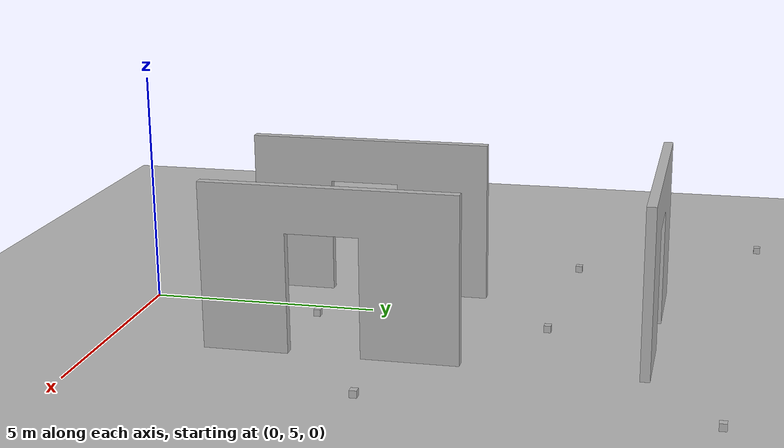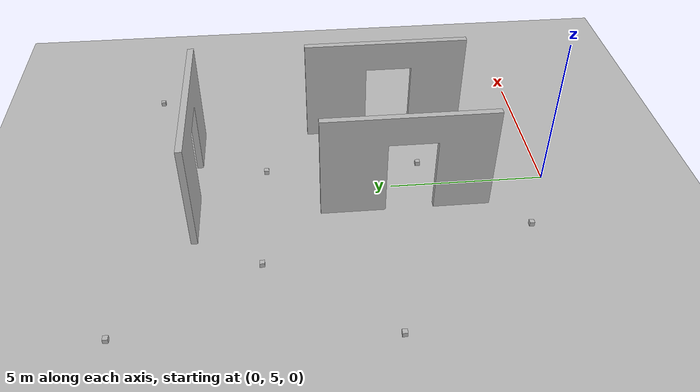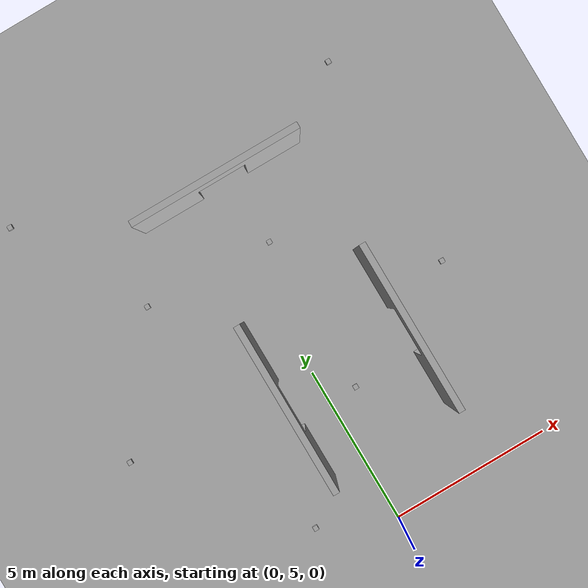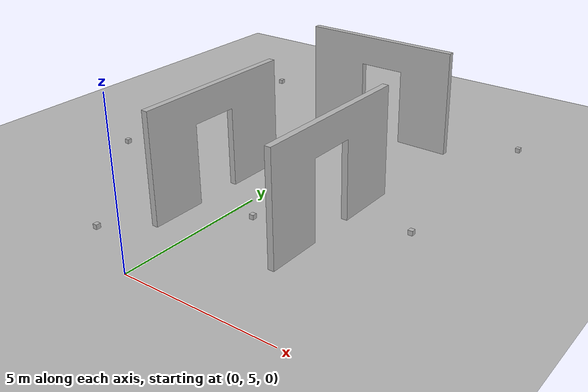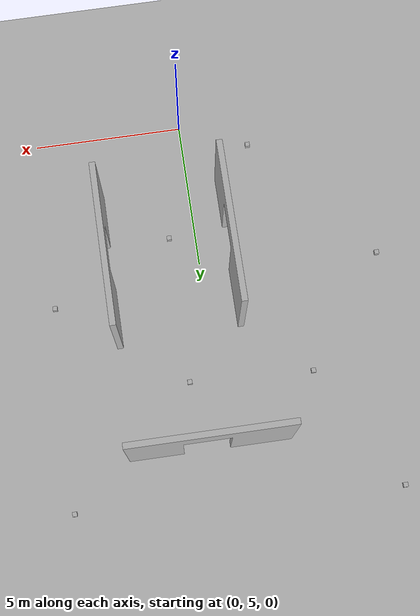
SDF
<sdf version="1.5">
 <world name="default">
  <physics type="ode">
   <max_step_size>0.004</max_step_size>
   <real_time_factor>1.0</real_time_factor>
   <real_time_update_rate>250</real_time_update_rate>
  </physics>
  <plugin name="gz::sim::systems::Physics" filename="gz-sim-physics-system"/>
  <plugin name="gz::sim::systems::UserCommands" filename="gz-sim-user-commands-system"/>
  <plugin name="gz::sim::systems::SceneBroadcaster" filename="gz-sim-scene-broadcaster-system"/>
  <plugin name="gz::sim::systems::Contact" filename="gz-sim-contact-system"/>
  <plugin name="gz::sim::systems::Imu" filename="gz-sim-imu-system"/>
  <plugin name="gz::sim::systems::AirPressure" filename="gz-sim-air-pressure-system"/>
  <plugin name="gz::sim::systems::ApplyLinkWrench" filename="gz-sim-apply-link-wrench-system"/>
  <plugin name="gz::sim::systems::NavSat" filename="gz-sim-navsat-system"/>
  <plugin name="gz::sim::systems::Sensors" filename="gz-sim-sensors-system">
   <render_engine>ogre2</render_engine>
  </plugin>
  <gravity>0 0 -9.8</gravity>
  <magnetic_field>6e-06 2.3e-05 -4.2e-05</magnetic_field>
  <atmosphere type="adiabatic"/>
  <scene>
   <grid>false</grid>
   <ambient>0.4 0.4 0.4 1</ambient>
   <background>0.7 0.7 0.7 1</background>
   <shadows>true</shadows>
  </scene>
  <spherical_coordinates>
   <surface_model>EARTH_WGS84</surface_model>
   <world_frame_orientation>ENU</world_frame_orientation>
   <latitude_deg>47.397971057728974</latitude_deg>
   <longitude_deg>8.546163739800146</longitude_deg>
   <elevation>0</elevation>
  </spherical_coordinates>
  <include><uri>model://sun</uri><pose relative_to="world">0 0 0 0 0 0</pose></include>
  <include><uri>model://ground_my</uri><pose relative_to="world">0 0 0 0 0 0</pose></include>
  <include>
   <name>wall_w_win_1</name>
   <uri>model://house_scene_1_wall_w_window</uri>
   <static>true</static>
   <pose>-2.243223 13.283944 0 0 0 1.567493</pose>
  </include>
  <include>
   <name>wall_w_win_2</name>
   <uri>model://house_scene_1_wall_w_window</uri>
   <static>true</static>
   <pose>0.083877 12.639949 0 0 0 0</pose>
  </include>
  <include>
   <name>wall_w_win_3</name>
   <uri>model://house_scene_1_wall_w_window</uri>
   <static>true</static>
   <pose>-3.983081 12.464193 0 0 0 0</pose>
  </include>
  <include><uri>model://platform</uri><static>true</static><pose>-6 7 0.15 0 0 1.57</pose></include>
  <include>
   <name>cube</name>
   <uri>model://1cube_green</uri>
   <static>true</static>
   <pose>0.890739 9 0.2 0 0 0</pose>
  </include>
  <include>
   <name>6cube</name>
   <uri>model://1cube_green</uri>
   <static>true</static>
   <pose>0.890739 14 0.2 0 0 0</pose>
  </include>
  <include>
   <name>7cube</name>
   <uri>model://1cube_blue</uri>
   <static>true</static>
   <pose>5 10.9 0.2 0 0 0</pose>
  </include>
  <include>
   <name>2cube</name>
   <uri>model://1cube_blue</uri>
   <static>true</static>
   <pose>5.126372 17.7 0.2 0 0 0</pose>
  </include>
  <include>
   <name>3cube</name>
   <uri>model://1cube_yellow</uri>
   <static>true</static>
   <pose>-2.27 6.01 0.2 0 0 0</pose>
  </include>
  <include>
   <name>8cube</name>
   <uri>model://1cube_yellow</uri>
   <static>true</static>
   <pose>-6 10.5 0.2 0 0 0</pose>
  </include>
  <include>
   <name>4cube</name>
   <uri>model://1cube_red</uri>
   <static>true</static>
   <pose>-3.2 14.2 0.2 0 0 0</pose>
  </include>
  <include>
   <name>5cube</name>
   <uri>model://1cube_red</uri>
   <static>true</static>
   <pose>-5.49 18.3 0.2 0 0 0</pose>
  </include>
 </world>
</sdf>

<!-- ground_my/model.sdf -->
<sdf version="1.5">
    <model name="ground">
        <static>true</static>
        <link name="link">
            <collision name="collision">
                <geometry>
                    <mesh>
                        <scale>1 1 1</scale>
                        <uri>model://ground_my/meshes/ground.dae</uri>
                    </mesh>
                    <surface>
                    <friction>
                        <ode>
                            <mu>1.2</mu>
                            <mu2>1.2</mu2>
                        </ode>
                    </friction>
                    </surface>
                </geometry>
            </collision>
            <visual name="visual">
              <geometry>
                <mesh>
                    <scale>1 1 1</scale>
                    <uri>model://ground_my/meshes/ground.dae</uri>
                </mesh>
              </geometry>
             </visual>
        </link>
    </model>
</sdf>

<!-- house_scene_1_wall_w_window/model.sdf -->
<sdf version="1.5">
    <model name="house3">
        <static>true</static>
        <link name="link">
            <collision name="collision1">
                <pose>0 0 0 0 0 0</pose>
                <geometry>
                    <mesh>
                        <uri>model://house_scene_1_wall_w_window/meshes/scene_1_wall_w_window.dae</uri>
                    </mesh>
                </geometry>
            </collision>
            <visual name="visual_walls3">
              <pose>0 0 0 0 0 0</pose>
              <geometry>
              <mesh>
                 <uri>model://house_scene_1_wall_w_window/meshes/scene_1_wall_w_window.dae</uri>
              </mesh>
              </geometry>
             </visual>
        </link>
    </model>
</sdf>

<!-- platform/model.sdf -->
<sdf version="1.6">
  <model name="platform">
    <static>false</static>
    <link name="dummy_upper"/>

    <joint name="world_joint" type="fixed">
      <parent>world</parent>
      <child>dummy_upper</child>
    </joint>
  </model>
</sdf>

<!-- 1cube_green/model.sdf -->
<sdf version="1.5">
    <model name="1cube">
        <static>true</static>
        <link name="link">
            <collision name="collision1">
                <pose>0 0 0 0 0 0</pose>
                <geometry>
                    <mesh>
                        <uri>model://1cube_green/meshes/cube.dae</uri>
                    </mesh>
                </geometry>
            </collision>
            <visual name="visual1">
              <pose>0 0 0 0 0 0</pose>
              <geometry>
              <mesh>
                 <uri>model://1cube_green/meshes/cube.dae</uri>
              </mesh>
              </geometry>
             </visual>
        </link>
    </model>
</sdf>

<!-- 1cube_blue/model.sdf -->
<sdf version="1.5">
    <model name="1cube">
        <static>true</static>
        <link name="link">
            <collision name="collision1">
                <pose>0 0 0 0 0 0</pose>
                <geometry>
                    <mesh>
                        <uri>model://1cube_blue/meshes/cube.dae</uri>
                    </mesh>
                </geometry>
            </collision>
            <visual name="visual1">
              <pose>0 0 0 0 0 0</pose>
              <geometry>
              <mesh>
                 <uri>model://1cube_blue/meshes/cube.dae</uri>
              </mesh>
              </geometry>
             </visual>
        </link>
    </model>
</sdf>

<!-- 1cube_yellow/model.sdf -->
<sdf version="1.5">
    <model name="1cube">
        <static>true</static>
        <link name="link">
            <collision name="collision1">
                <pose>0 0 0 0 0 0</pose>
                <geometry>
                    <mesh>
                        <uri>model://1cube_yellow/meshes/cube.dae</uri>
                    </mesh>
                </geometry>
            </collision>
            <visual name="visual1">
              <pose>0 0 0 0 0 0</pose>
              <geometry>
              <mesh>
                 <uri>model://1cube_yellow/meshes/cube.dae</uri>
              </mesh>
              </geometry>
             </visual>
        </link>
    </model>
</sdf>

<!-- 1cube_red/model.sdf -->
<sdf version="1.5">
    <model name="1cube">
        <static>true</static>
        <link name="link">
            <collision name="collision1">
                <pose>0 0 0 0 0 0</pose>
                <geometry>
                    <mesh>
                        <uri>model://1cube_red/meshes/cube.dae</uri>
                    </mesh>
                </geometry>
            </collision>
            <visual name="visual1">
              <pose>0 0 0 0 0 0</pose>
              <geometry>
              <mesh>
                 <uri>model://1cube_red/meshes/cube.dae</uri>
              </mesh>
              </geometry>
             </visual>
        </link>
    </model>
</sdf>
